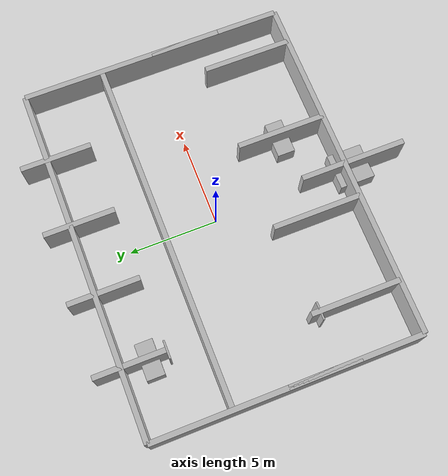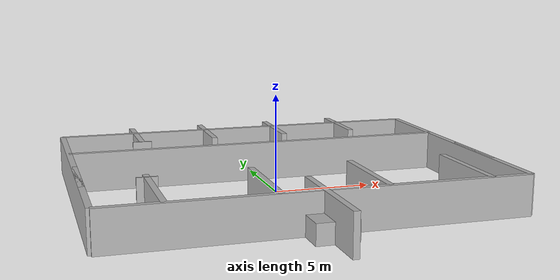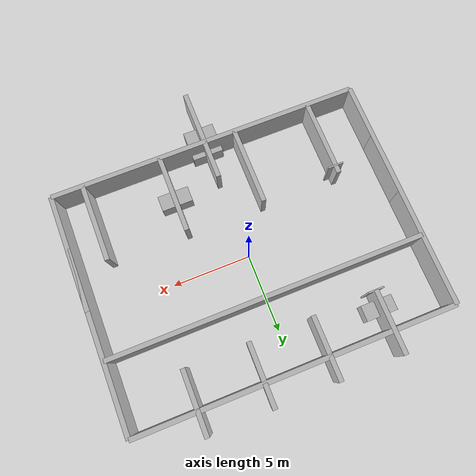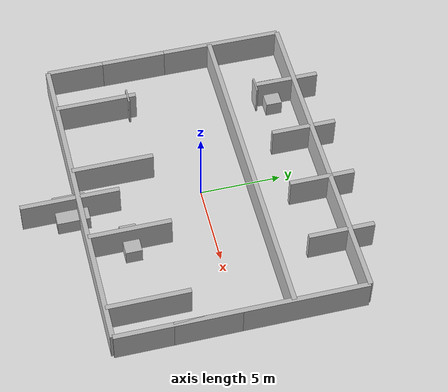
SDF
<?xml version="1.0" ?>
<sdf version="1.6">
  <world name="hospital_world">

    <!-- ================= Outer Walls ================= -->
    <model name="outer_wall_north">
      <static>true</static>
      <pose>0 7.5 1 0 0 0</pose>
      <link name="link">
        <collision name="collision">
          <geometry><box><size>20 0.3 2</size></box></geometry>
        </collision>
        <visual name="visual">
          <geometry><box><size>20 0.3 2</size></box></geometry>
        </visual>
      </link>
    </model>

    <model name="outer_wall_south">
      <static>true</static>
      <pose>0 -7.5 1 0 0 0</pose>
      <link name="link">
        <collision name="collision">
          <geometry><box><size>20 0.3 2</size></box></geometry>
        </collision>
        <visual name="visual">
          <geometry><box><size>20 0.3 2</size></box></geometry>
        </visual>
      </link>
    </model>

    <model name="outer_wall_east">
      <static>true</static>
      <pose>10 0 1 0 0 1.57</pose>
      <link name="link">
        <collision name="collision">
          <geometry><box><size>15 0.3 2</size></box></geometry>
        </collision>
        <visual name="visual">
          <geometry><box><size>15 0.3 2</size></box></geometry>
        </visual>
      </link>
    </model>

    <model name="outer_wall_west">
      <static>true</static>
      <pose>-10 0 1 0 0 1.57</pose>
      <link name="link">
        <collision name="collision">
          <geometry><box><size>15 0.3 2</size></box></geometry>
        </collision>
        <visual name="visual">
          <geometry><box><size>15 0.3 2</size></box></geometry>
        </visual>
      </link>
    </model>

    <!-- ================= Main Corridor ================= -->
    <model name="corridor_divider">
      <static>true</static>
      <pose>0 3 1 0 0 0</pose>
      <link name="link">
        <collision name="collision">
          <geometry><box><size>20 0.3 2</size></box></geometry>
        </collision>
        <visual name="visual">
          <geometry><box><size>20 0.3 2</size></box></geometry>
        </visual>
      </link>
    </model>

    <!-- ================= Patient Rooms (Top Row) ================= -->
    <model name="patient_room_1_wall">
      <static>true</static>
      <pose>-6 7 1 0 0 1.57</pose>
      <link name="link">
        <collision name="collision"><geometry><box><size>4 0.3 2</size></box></geometry></collision>
        <visual name="visual"><geometry><box><size>4 0.3 2</size></box></geometry></visual>
      </link>
    </model>
    <model name="patient_room_2_wall">
      <static>true</static>
      <pose>-2 7 1 0 0 1.57</pose>
      <link name="link">
        <collision name="collision"><geometry><box><size>4 0.3 2</size></box></geometry></collision>
        <visual name="visual"><geometry><box><size>4 0.3 2</size></box></geometry></visual>
      </link>
    </model>
    <model name="patient_room_3_wall">
      <static>true</static>
      <pose>2 7 1 0 0 1.57</pose>
      <link name="link">
        <collision name="collision"><geometry><box><size>4 0.3 2</size></box></geometry></collision>
        <visual name="visual"><geometry><box><size>4 0.3 2</size></box></geometry></visual>
      </link>
    </model>
    <model name="patient_room_4_wall">
      <static>true</static>
      <pose>6 7 1 0 0 1.57</pose>
      <link name="link">
        <collision name="collision"><geometry><box><size>4 0.3 2</size></box></geometry></collision>
        <visual name="visual"><geometry><box><size>4 0.3 2</size></box></geometry></visual>
      </link>
    </model>

    <!-- ================= Functional Rooms (Bottom Row) ================= -->
    <model name="icu_wall">
      <static>true</static>
      <pose>-7 -5 1 0 0 1.57</pose>
      <link name="link">
        <collision name="collision"><geometry><box><size>5 0.3 2</size></box></geometry></collision>
        <visual name="visual"><geometry><box><size>5 0.3 2</size></box></geometry></visual>
      </link>
    </model>
    <model name="operation_theatre_wall">
      <static>true</static>
      <pose>-2 -5 1 0 0 1.57</pose>
      <link name="link">
        <collision name="collision"><geometry><box><size>5 0.3 2</size></box></geometry></collision>
        <visual name="visual"><geometry><box><size>5 0.3 2</size></box></geometry></visual>
      </link>
    </model>
    <model name="lab_wall">
      <static>true</static>
      <pose>3 -5 1 0 0 1.57</pose>
      <link name="link">
        <collision name="collision"><geometry><box><size>5 0.3 2</size></box></geometry></collision>
        <visual name="visual"><geometry><box><size>5 0.3 2</size></box></geometry></visual>
      </link>
    </model>
    <model name="pharmacy_wall">
      <static>true</static>
      <pose>8 -5 1 0 0 1.57</pose>
      <link name="link">
        <collision name="collision"><geometry><box><size>5 0.3 2</size></box></geometry></collision>
        <visual name="visual"><geometry><box><size>5 0.3 2</size></box></geometry></visual>
      </link>
    </model>

    <!-- ================= Side Rooms ================= -->
    <model name="storage_wall">
      <static>true</static>
      <pose>-10 -2 1 0 0 1.57</pose>
      <link name="link">
        <collision name="collision"><geometry><box><size>4 0.3 2</size></box></geometry></collision>
        <visual name="visual"><geometry><box><size>4 0.3 2</size></box></geometry></visual>
      </link>
    </model>
    <model name="nurse_station_wall">
      <static>true</static>
      <pose>10 -2 1 0 0 1.57</pose>
      <link name="link">
        <collision name="collision"><geometry><box><size>4 0.3 2</size></box></geometry></collision>
        <visual name="visual"><geometry><box><size>4 0.3 2</size></box></geometry></visual>
      </link>
    </model>
    <model name="charging_dock_wall">
      <static>true</static>
      <pose>0 -8 1 0 0 1.57</pose>
      <link name="link">
        <collision name="collision"><geometry><box><size>6 0.3 2</size></box></geometry></collision>
        <visual name="visual"><geometry><box><size>6 0.3 2</size></box></geometry></visual>
      </link>
    </model>

    <!-- ================= Doors (Examples, replicate for all rooms) ================= -->
    <model name="door_patient_1">
      <static>true</static>
      <pose>-6 5 1 0 0 0</pose>
      <link name="link">
        <collision name="collision"><geometry><box><size>1 0.1 2</size></box></geometry></collision>
        <visual name="visual"><geometry><box><size>1 0.1 2</size></box></geometry></visual>
      </link>
    </model>

    <model name="door_icu">
      <static>true</static>
      <pose>-7 -3 1 0 0 0</pose>
      <link name="link">
        <collision name="collision"><geometry><box><size>1 0.1 2</size></box></geometry></collision>
        <visual name="visual"><geometry><box><size>1 0.1 2</size></box></geometry></visual>
      </link>
    </model>

    <!-- ================= Furniture placeholders ================= -->
    <!-- Example: Patient bed in room 1 -->
    <model name="bed_patient_1">
      <static>true</static>
      <pose>-6 6 0.5 0 0 0</pose>
      <link name="link">
        <collision name="collision"><geometry><box><size>2 1 1</size></box></geometry></collision>
        <visual name="visual"><geometry><box><size>2 1 1</size></box></geometry></visual>
      </link>
    </model>

    <!-- Example: Lab table -->
    <model name="lab_table">
      <static>true</static>
      <pose>3 -5 0.5 0 0 0</pose>
      <link name="link">
        <collision name="collision"><geometry><box><size>2 1 1</size></box></geometry></collision>
        <visual name="visual"><geometry><box><size>2 1 1</size></box></geometry></visual>
      </link>
    </model>

    <!-- Example: Charging Dock placeholder -->
    <model name="charging_station">
      <static>true</static>
      <pose>0 -8 0.5 0 0 0</pose>
      <link name="link">
        <collision name="collision"><geometry><box><size>2 2 1</size></box></geometry></collision>
        <visual name="visual"><geometry><box><size>2 2 1</size></box></geometry></visual>
      </link>
    </model>

  </world>
</sdf>
